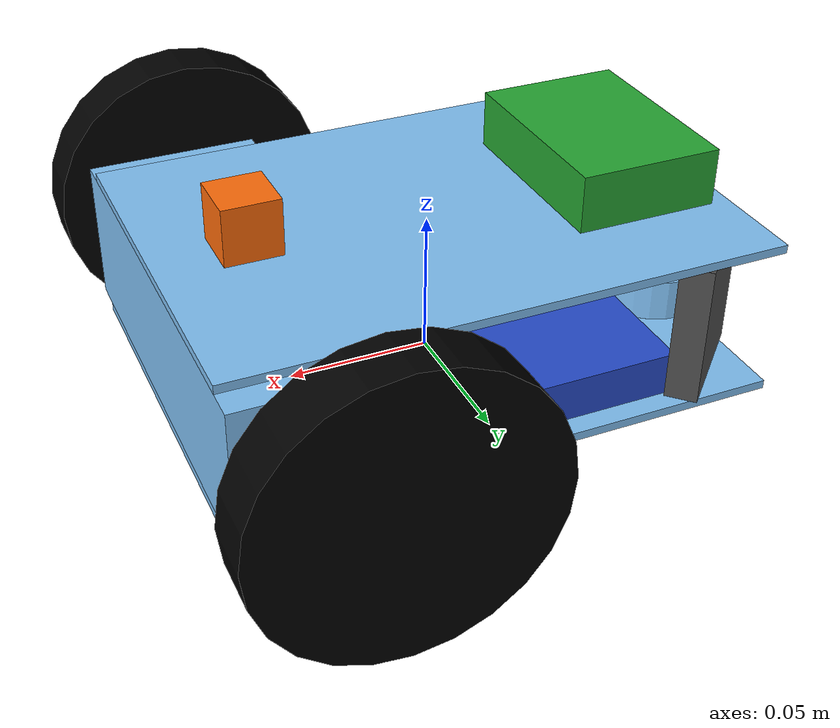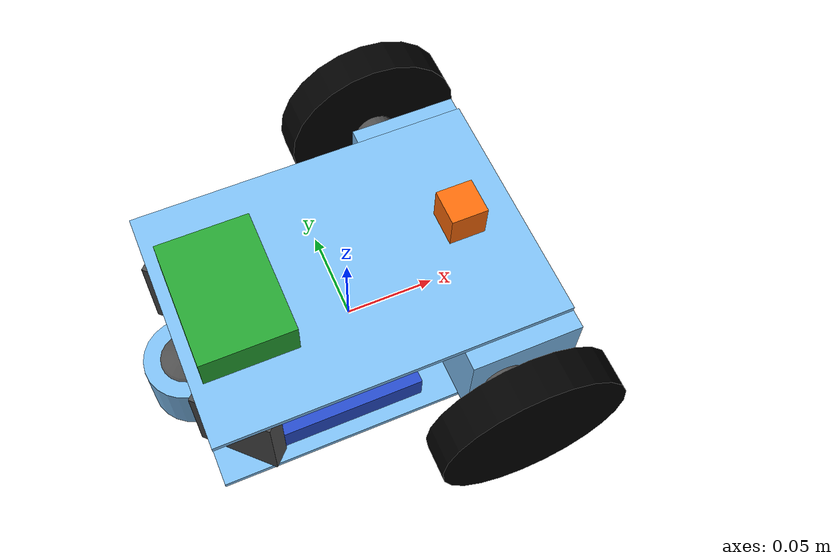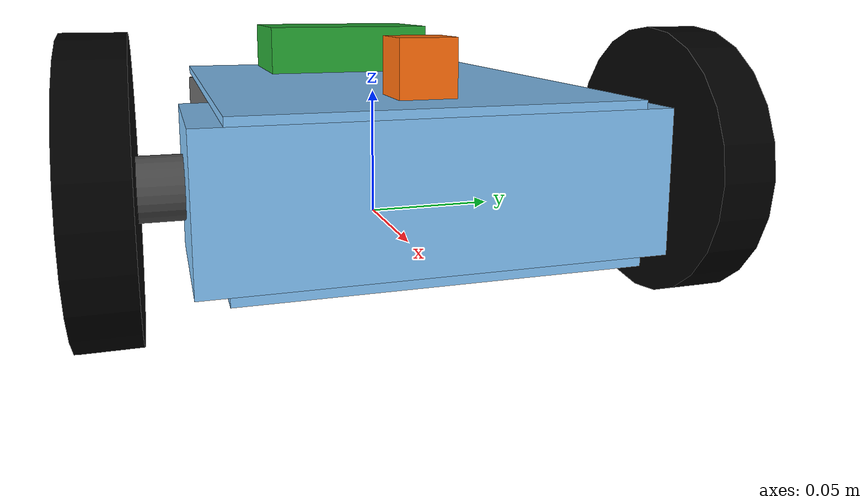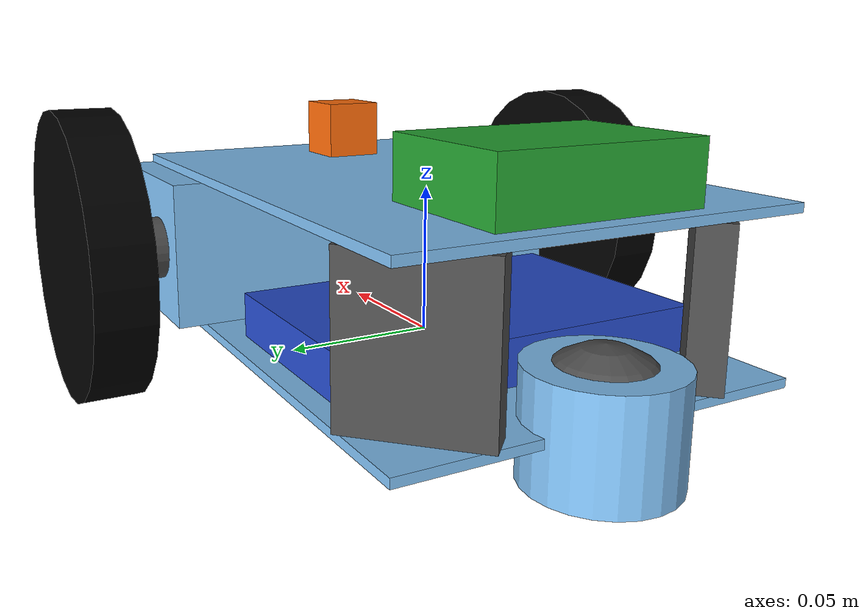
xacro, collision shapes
<?xml version="1.0"?>
<robot name="accurate_noah"
	xmlns:xacro="http://www.ros.org/wiki/xacro">

	<xacro:include filename="$(find noah_description)/urdf/materials.xacro" />
	<xacro:include filename="$(find noah_description)/urdf/wheel.urdf.xacro" />
	<xacro:include filename="$(find noah_description)/urdf/camera_sensor.urdf.xacro" />
	<xacro:include filename="$(find noah_description)/urdf/accurate_base_link.urdf.xacro" />
	<xacro:include filename="$(find noah_description)/urdf/caster_link.urdf.xacro" />

	<xacro:property name="M_PI" value="3.14159"/>

	<!-- Whole accurate_base_link dimensions -->
	<xacro:property name="base_width" value="0.16426" />
	<xacro:property name="base_depth" value="0.19" />
	<xacro:property name="base_height" value="0.056" />

	<xacro:property name="caster_radius" value="0.022" />

	<xacro:property name="wheel_length" value="0.02" />
	<xacro:property name="wheel_radius" value="0.05" />

	<xacro:property name="camera_size" value="0.02" />

	<!-- Base Link -->
	<xacro:accurate_base_link />

	<!-- Caster -->
	<xacro:caster caster_radius="${caster_radius}" parent_link="caster_holder_link">
		<origin xyz="0 0 0" rpy="0 0 0" />
	</xacro:caster>

	<!-- Wheels -->
	<xacro:noah_wheel wheel_prefix="left" wheel_length="${wheel_length}" wheel_radius="${wheel_radius}" parent_link="left_wheel_adapter_link">
		<origin xyz="0 ${wheel_length/2} 0" rpy="0 0 0" />
	</xacro:noah_wheel>

	<xacro:noah_wheel wheel_prefix="right" wheel_length="${wheel_length}" wheel_radius="${wheel_radius}" parent_link="right_wheel_adapter_link">
		<origin xyz="0 -${wheel_length/2} 0" rpy="0 0 0" />
	</xacro:noah_wheel>

	<!-- Camera -->
	<xacro:noah_camera camera_size="${camera_size}" parent_link="top_generic_link">
		<!-- 0.0015 is half the heigth of top generic link -->
		<origin xyz="${base_depth/3} 0 ${camera_size/2 + 0.0015}" rpy="0 0 0" />
	</xacro:noah_camera>

	<!-- *******Gazebo specific******* -->

	<gazebo>
		<plugin name="differential_drive_controller" filename="libgazebo_ros_diff_drive.so">
			<legacyMode>false</legacyMode>
			<alwaysOn>true</alwaysOn>
			<updateRate>20</updateRate>
			<leftJoint>left_wheel_joint</leftJoint>
			<rightJoint>right_wheel_joint</rightJoint>
			<wheelSeparation>0.2</wheelSeparation>
			<wheelDiameter>0.1</wheelDiameter>
			<torque>20</torque>
			<publishWheelTF>False</publishWheelTF>
			<publishWheelJointState>True</publishWheelJointState>
			<commandTopic>cmd_vel</commandTopic>
			<odometryTopic>odom</odometryTopic>
			<odometryFrame>odom</odometryFrame>
			<robotBaseFrame>base_generic_link</robotBaseFrame>
			<publishOdomTF>true</publishOdomTF>
			<wheelAcceleration>0</wheelAcceleration>
			<wheelTorque>5</wheelTorque>
			<odometrySource>world</odometrySource>
			<rosDebugLevel>1</rosDebugLevel>
		</plugin>
	</gazebo>

</robot>

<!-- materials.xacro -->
<robot>

	<material name="black">
		<color rgba="0.0 0.0 0.0 1.0"/>
	</material>

	<material name="blue">
		<color rgba="0.0 0.0 0.8 1.0"/>
	</material>

	<material name="green">
		<color rgba="0.0 1.0 0.0 1.0"/>
	</material>

	<material name="grey">
		<color rgba="0.2 0.2 0.2 1.0"/>
	</material>

	<material name="light_grey">
		<color rgba="0.5 0.5 0.5 1.0"/>
	</material>

	<material name="orange">
		<color rgba="${255/255} ${108/255} ${10/255} 1.0"/>
	</material>

	<material name="brown">
		<color rgba="${222/255} ${207/255} ${195/255} 1.0"/>
	</material>

	<material name="red">
		<color rgba="0.8 0.0 0.0 1.0"/>
	</material>

	<material name="white">
		<color rgba="1.0 1.0 1.0 1.0"/>
	</material>

</robot>

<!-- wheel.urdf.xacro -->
<robot xmlns:xacro="http://ros.org/wiki/xacro" name="noah_wheel">

	<xacro:macro name="noah_wheel" params="wheel_prefix wheel_length wheel_radius parent_link *joint_pose">

		<xacro:property name="M_PI" value="3.14159"/>

		<!-- Wheel description -->
		<link name="${wheel_prefix}_wheel_link">

			<inertial>
				<mass value="0.185" />
				<!-- Taken as solid cylinder -->
				<origin xyz="0 0 0" rpy="${M_PI/2} 0 0" />
				<inertia ixx="0.000121792" ixy="0" ixz="0" iyy="0.000121792" iyz="0" izz="0.00023125" />
			</inertial>

			<visual>
				<origin xyz="0 0 0" rpy="${M_PI/2} 0 0" />
				<geometry>					<!-- Meshes taken from husky robot -->
					<cylinder length="${wheel_length}" radius="${wheel_radius}" />
				</geometry>
				<material name="black" />
			</visual>
			<collision>
				<origin xyz="0 0 0" rpy="${M_PI/2} 0 0" />
				<geometry>
					<cylinder length="${wheel_length}" radius="${wheel_radius}" />
				</geometry>
			</collision>

		</link>

		<!-- Wheel joint, where the wheel is attached. Should specify parent link and position in parent link -->
		<joint name="${wheel_prefix}_wheel_joint" type="continuous">
			<parent link="${parent_link}" />
			<child link="${wheel_prefix}_wheel_link" />
			<xacro:insert_block name="joint_pose"/>
			<axis xyz="0 1 0" />
		</joint>

		<!-- Wheels gazebo properties -->
		<gazebo reference="${wheel_prefix}_wheel_link">
			<mu1 value="1.0"/>
			<mu2 value="1.0"/>
			<kp value="10000000.0" />
			<kd value="1.0" />
			<fdir1 value="1 0 0"/>
			<material>Gazebo/Black</material>
		</gazebo>

	</xacro:macro>

</robot>

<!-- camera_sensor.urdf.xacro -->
<robot xmlns:xacro="http://ros.org/wiki/xacro" name="noah_camera">

  <xacro:macro name="noah_camera" params="camera_size parent_link *joint_pose">

    <xacro:property name="lens_size" value="0.01"/>

    <!-- Link describing the camera "box" -->
    <link name="camera_link">
      <collision>
        <origin xyz="0 0 0" rpy="0 0 0"/>
        <geometry>
          <box size="${camera_size} ${camera_size} ${camera_size}"/>
        </geometry>
      </collision>

      <visual>
        <origin xyz="0 0 0" rpy="0 0 0"/>
        <geometry>
          <box size="${camera_size} ${camera_size} ${camera_size}"/>
        </geometry>
        <material name="orange"/>
      </visual>

      <inertial>
        <mass value="1e-5" />
        <origin xyz="0 0 0" rpy="0 0 0"/>
        <inertia ixx="1e-6" ixy="0" ixz="0" iyy="1e-6" iyz="0" izz="1e-6" />
      </inertial>
    </link>

    <!-- Where the camera attaches to parent_link, given by param -->
    <joint name="camera_joint" type="fixed">
      <xacro:insert_block name="joint_pose"/>
      <parent link="${parent_link}" />
      <child link="camera_link" />
    </joint>

    <!-- Link and joint to position correctly the camera lens, where the sensor rays start -->
    <link name="lens_link">
      <visual>
        <origin xyz="0 0 0" rpy="0 0 0" />
        <geometry>
          <box size="0.0001 ${lens_size} ${lens_size}" />
        </geometry>
        <material name="white"/>
      </visual>
    </link>
    <joint name="lens_camera_joint" type="fixed">
      <origin xyz="${camera_size/2} 0 0" rpy="0 0 0" />
      <parent link="camera_link" />
      <child link="lens_link"/>
    </joint>

    <!-- This next two link and joints are taken from the husky robot. They are meant to correct the kinect point cloud camera position.-->
    <!-- this link is the origin for the camera's data -->
    <link name="kinect" />
    <joint name="kinect_lens_joint" type="fixed">
      <parent link="lens_link"/>
      <child link="kinect"/>
      <origin xyz="0 0 0" rpy="0 0 0"/>
    </joint>

    <link name="kinect_gazebo" />
    <joint name="kinect_gazebo_joint" type="fixed">
      <parent link="kinect"/>
      <child link="kinect_gazebo"/>
      <origin xyz="0.0 0 0" rpy="-1.5707963267948966 0 -1.5707963267948966"/>
    </joint>

    <gazebo reference="kinect">
      <sensor name="kinect_camera" type="depth">
        <update_rate>20</update_rate>
        <camera>
          <horizontal_fov>1.047198</horizontal_fov>
          <image>
            <width>640</width>
            <height>480</height>
            <format>R8G8B8</format>
          </image>
          <clip>
            <near>0.05</near>
            <far>3</far>
          </clip>
        </camera>
        <plugin name="kinect_plugin" filename="libgazebo_ros_openni_kinect.so">
          <baseline>0.2</baseline>
          <alwaysOn>true</alwaysOn>
          <updateRate>1.0</updateRate>
          <cameraName>kinect</cameraName>
          <imageTopicName>/rgb/image</imageTopicName>
          <cameraInfoTopicName>/rgb/camera_info</cameraInfoTopicName>
          <depthImageTopicName>/depth/image</depthImageTopicName>
          <depthImageCameraInfoTopicName>/depth/camera_info</depthImageCameraInfoTopicName>
          <pointCloudTopicName>/depth/points</pointCloudTopicName>
          <frameName>kinect_gazebo</frameName>
          <pointCloudCutoff>0.5</pointCloudCutoff>
          <pointCloudCutoffMax>3.0</pointCloudCutoffMax>
          <distortionK1>0.00000001</distortionK1>
          <distortionK2>0.00000001</distortionK2>
          <distortionK3>0.00000001</distortionK3>
          <distortionT1>0.00000001</distortionT1>
          <distortionT2>0.00000001</distortionT2>
          <CxPrime>0</CxPrime>
          <Cx>0</Cx>
          <Cy>0</Cy>
          <focalLength>0</focalLength>
          <hackBaseline>0</hackBaseline>
        </plugin>
      </sensor>
    </gazebo>

    <gazebo reference="lens_link">
      <sensor type="ray" name="head_hokuyo_sensor">
        <pose>0 0 0 0 0 0</pose>
        <visualize>true</visualize>
        <update_rate>40</update_rate>
        <ray>
          <scan>
            <horizontal>
              <samples>720</samples>
              <resolution>1</resolution>
              <min_angle>-1.4</min_angle>
              <max_angle>1.4</max_angle>
            </horizontal>
          </scan>
          <range>
            <min>0.10</min>
            <max>30.0</max>
            <resolution>0.01</resolution>
          </range>
          <noise>
            <type>gaussian</type>
            <mean>0.0</mean>
            <stddev>0.01</stddev>
          </noise>
        </ray>
        <plugin name="gazebo_ros_laser_controller" filename="libgazebo_ros_laser.so">
          <topicName>/scan</topicName>
          <frameName>lens_link</frameName>
        </plugin>
      </sensor>
    </gazebo>

    <!-- Gazebo color -->
    <gazebo reference="camera_link">
      <material> Gazebo/Orange </material>
    </gazebo>

  </xacro:macro>

</robot>

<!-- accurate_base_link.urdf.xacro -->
<robot xmlns:xacro="http://ros.org/wiki/xacro" name="accurate_base_link">

	<!-- All visuals meshes origins are eye-balled to match the collisions
		 This is due to a mismatch in positions when generating the meshes for all the parts. -->

	<xacro:macro name="accurate_base_link">

		<xacro:property name="M_PI" value="3.14159"/>

		<!-- BASE************************************************************************** -->

		<xacro:property name="base_generic_depth" value="0.19"/>
		<xacro:property name="base_generic_width" value="0.135"/>
		<xacro:property name="base_generic_heigth" value="0.003"/>

		<link name="base_generic_link">			<!-- Botom base generic -->

			<inertial>
				<mass value="0.01117" />
				<inertia ixx="0.0000336115" ixy="0" ixz="0" iyy="0.0000505675" iyz="0" izz="0.0000169728" />
			</inertial>

			<visual>
				<origin xyz="-0.095 -0.0675 -0.0015" rpy="${M_PI/2} 0 ${M_PI/2}" />
				<geometry>
					<mesh filename="package://noah_description/meshes/noah_base_generic_printed.dae" scale="0.001 0.001 0.001"/>
				</geometry>
			</visual>
			<collision>
				<origin xyz="0 0 0" rpy="0 0 0" />
				<geometry>
					<box size="${base_generic_depth} ${base_generic_width} ${base_generic_heigth}" />
				</geometry>
			</collision>

		</link>

		<gazebo reference="base_generic_link">
			<material>Gazebo/SkyBlue</material>
		</gazebo>

		<!-- FRONT************************************************************************** -->

		<xacro:property name="front_depth" value="0.06"/>
		<xacro:property name="front_width" value="0.155"/>
		<xacro:property name="front_heigth" value="0.05"/>

		<link name="front_link">

			<inertial>
				<mass value="0.19" />
				<inertia ixx="0.0000965833" ixy="0" ixz="0" iyy="0.000437396" iyz="0" izz="0.000419979" />
			</inertial>

			<visual>
				<origin xyz="-0.03 -0.0775 -0.025" rpy="${M_PI/2} 0 ${M_PI/2}" />
				<geometry>
					<mesh filename="package://noah_description/meshes/front_noah_printed.STL" scale="0.001 0.001 0.001"/>
				</geometry>
			</visual>
			<collision>
				<origin xyz="0 0 0" rpy="0 0 0" />
				<geometry>
					<box size="${front_depth} ${front_width} ${front_heigth}" />
				</geometry>
			</collision>
		</link>

		<joint name="base_front_joint" type="fixed">
			<parent link="base_generic_link" />
			<child link="front_link" />
			<origin xyz="${base_generic_depth/2 - front_depth/2} 0 ${front_heigth/2 + base_generic_heigth/2}" rpy="0 0 0" />
		</joint>

		<gazebo reference="front_link">
			<material>Gazebo/SkyBlue</material>
		</gazebo>

		<!-- CASTER HOLDER************************************************************************** -->

		<xacro:property name="caster_holder_radius" value="0.02299"/>
		<xacro:property name="caster_holder_length" value="0.033316"/>

		<link name="caster_holder_link">
			<inertial>
				<mass value="0.01391" />
				<inertia ixx="0.0000031246" ixy="0" ixz="0" iyy="0.0000031246" iyz="0" izz="0.0003676" />
			</inertial>

			<visual>
				<origin xyz="0.022964 -0.03048 0.016316" rpy="-${M_PI/2} 0 ${M_PI/2}" />
				<geometry>
					<mesh filename="package://noah_description/meshes/C000_printed.STL" scale="0.001 0.001 0.001"/>
				</geometry>
			</visual>

			<visual>
				<origin xyz="0.022964 -0.030488 0.016316" rpy="-${M_PI/2} 0 ${M_PI/2}" />
				<geometry>
					<mesh filename="package://noah_description/meshes/C001_printed.STL" scale="0.001 0.001 0.001"/>
				</geometry>
			</visual>

			<collision>
				<origin xyz="0 0 0" rpy="0 0 0" />
				<geometry>
					<cylinder radius="${caster_holder_radius}" length="${caster_holder_length}"/>
				</geometry>
			</collision>
		</link>

		<joint name="caster_holder_joint" type="fixed">
			<parent link="base_generic_link" />
			<child link="caster_holder_link" />
			<origin xyz="-0.091 0 0" rpy="0 0 0" />
			<!-- Origin in x adjusted by hand -->
		</joint>

		<gazebo reference="caster_holder_link">
			<material>Gazebo/SkyBlue</material>
		</gazebo>

		<!-- BASE SUPPORTS************************************************************************** -->
		<!-- Joints x and y coords are adjusted by hand -->

		<xacro:property name="base_support_depth" value="0.04306"/>
		<xacro:property name="base_support_width" value="0.011069"/>
		<xacro:property name="base_support_heigth" value="0.05"/>

		<link name="left_base_support_link">
			<inertial>
				<mass value="0.0104" />
				<origin xyz="0 0 0" rpy="0 0 -${M_PI/4}" />
				<inertia ixx="0.0000037736" ixy="0" ixz="0" iyy="0.000001713" iyz="0" izz="0.0000022728" />
			</inertial>

			<visual>
				<origin xyz="-0.016 0.093 0.025" rpy="-${M_PI/2} 0 -${M_PI/4}" />
				<geometry>
					<mesh filename="package://noah_description/meshes/back_left_generic_printed.STL" scale="0.001 0.001 0.001"/>
				</geometry>
			</visual>

			<collision>
				<origin xyz="0 0 0" rpy="0 0 -${M_PI/4}" />
				<geometry>
					<box size="${base_support_depth} ${base_support_width} ${base_support_heigth}" />
				</geometry>
			</collision>
		</link>

		<joint name="base_left_support_joint" type="fixed">
			<parent link="base_generic_link" />
			<child link="left_base_support_link" />
			<origin xyz="-0.07847 -0.04997 ${base_generic_heigth/2 + base_support_heigth/2}" rpy="0 0 0" />
		</joint>

		<link name="right_base_support_link">
			<inertial>
				<mass value="0.0104" />
				<origin xyz="0 0 0" rpy="0 0 ${M_PI/4}" />
				<inertia ixx="0.0000037736" ixy="0" ixz="0" iyy="0.000001713" iyz="0" izz="0.0000022728" />
			</inertial>

			<visual>
				<origin xyz="-0.008 -0.085 0.025" rpy="-${M_PI/2} 0 -2.35619" />
				<geometry>
					<mesh filename="package://noah_description/meshes/back_right_generic_printed.STL" scale="0.001 0.001 0.001"/>
				</geometry>
			</visual>

			<collision>
				<origin xyz="0 0 0" rpy="0 0 ${M_PI/4}" />
				<geometry>
					<box size="${base_support_depth} ${base_support_width} ${base_support_heigth}" />
				</geometry>
			</collision>
		</link>

		<joint name="base_right_support_joint" type="fixed">
			<parent link="base_generic_link" />
			<child link="right_base_support_link" />
			<origin xyz="-0.07847 0.04997 ${base_generic_heigth/2 + base_support_heigth/2}" rpy="0 0 0" />
		</joint>

		<gazebo reference="left_base_support_link">
			<material>Gazebo/DarkGrey</material>
		</gazebo>

		<gazebo reference="right_base_support_link">
			<material>Gazebo/DarkGrey</material>
		</gazebo>

		<!-- TOP************************************************************************** -->

		<xacro:property name="top_generic_depth" value="0.19"/>
		<xacro:property name="top_generic_width" value="0.135"/>
		<xacro:property name="top_generic_heigth" value="0.003"/>

		<link name="top_generic_link">

			<inertial>
				<mass value="0.01117" />
				<inertia ixx="0.0000336115" ixy="0" ixz="0" iyy="0.0000505675" iyz="0" izz="0.0000169728" />
			</inertial>

			<visual>
				<origin xyz="-0.095 -0.0675 -0.0015" rpy="${M_PI/2} 0 ${M_PI/2}" />
				<geometry>
					<mesh filename="package://noah_description/meshes/top_generic.STL" scale="0.001 0.001 0.001"/>
				</geometry>
			</visual>
			<collision>
				<origin xyz="0 0 0" rpy="0 0 0" />
				<geometry>
					<box size="${top_generic_depth} ${top_generic_width} ${top_generic_heigth}" />
				</geometry>
			</collision>

		</link>

		<joint name="base_top_joint" type="fixed">
			<parent link="base_generic_link" />
			<child link="top_generic_link" />
			<origin xyz="0 0 ${base_support_heigth + top_generic_heigth/2 + base_generic_heigth/2}" rpy="0 0 0" />
		</joint>

		<gazebo reference="top_generic_link">
			<material>Gazebo/SkyBlue</material>
		</gazebo>

		<!-- WHEEL ADAPTERS************************************************************************** -->

		<xacro:property name="wheel_adapter_radius" value="0.01085"/>
		<xacro:property name="wheel_adapter_length" value="0.02926"/>

		<link name="left_wheel_adapter_link">

			<inertial>
				<mass value="0.015" />
				<origin xyz="0 0 0" rpy="${M_PI/2} 0 0" />
				<inertia ixx="0.000001512" ixy="0" ixz="0" iyy="0.000001512" iyz="0" izz="0.00000088291" />
			</inertial>

			<visual>
				<origin xyz="-0.011 0.015 -0.013" rpy="${M_PI/2} 0 0" />
				<geometry>
					<mesh filename="package://noah_description/meshes/adapter1_printed.STL" scale="0.001 0.001 0.001"/>
				</geometry>
			</visual>
			<collision>
				<origin xyz="0 0 0" rpy="${M_PI/2} 0 0" />
				<geometry>
					<cylinder length="${wheel_adapter_length}" radius="${wheel_adapter_radius}" />
				</geometry>
			</collision>

		</link>

		<joint name="front_left_wheel_adapter_joint" type="fixed">
			<parent link="front_link" />
			<child link="left_wheel_adapter_link" />
			<origin xyz="-${wheel_adapter_radius} ${front_width/2 + wheel_adapter_length/2} 0" rpy="0 0 0" />
		</joint>

		<link name="right_wheel_adapter_link">

			<inertial>
				<mass value="0.015" />
				<origin xyz="0 0 0" rpy="${M_PI/2} 0 0" />
				<inertia ixx="0.000001512" ixy="0" ixz="0" iyy="0.000001512" iyz="0" izz="0.00000088291" />
			</inertial>

			<visual>
				<origin xyz="0.011 -0.015 -0.013" rpy="${M_PI/2} 0 ${M_PI}" />
				<geometry>
					<mesh filename="package://noah_description/meshes/adapter1_printed.STL" scale="0.001 0.001 0.001"/>
				</geometry>
			</visual>
			<collision>
				<origin xyz="0 0 0" rpy="${M_PI/2} 0 0" />
				<geometry>
					<cylinder length="${wheel_adapter_length}" radius="${wheel_adapter_radius}" />
				</geometry>
			</collision>

		</link>

		<joint name="front_right_wheel_adapter_joint" type="fixed">
			<parent link="front_link" />
			<child link="right_wheel_adapter_link" />
			<origin xyz="-${wheel_adapter_radius} -${front_width/2 + wheel_adapter_length/2} 0" rpy="0 0 0" />
		</joint>

		<gazebo reference="left_wheel_adapter_link">
			<material>Gazebo/DarkGrey</material>
		</gazebo>

		<gazebo reference="right_wheel_adapter_link">
			<material>Gazebo/DarkGrey</material>
		</gazebo>

		<!-- BATTERIES************************************************************************** -->

		<xacro:property name="battery_depth" value="0.05"/>
		<xacro:property name="battery_width" value="0.07"/>
		<xacro:property name="battery_heigth" value="0.02"/>

		<link name="battery_link">

			<inertial>
				<mass value="0.22" />
				<inertia ixx="0.1" ixy="0" ixz="0" iyy="0.1" iyz="0" izz="0.1" />
			</inertial>

			<visual>
				<origin xyz="0 0 0" rpy="0 0 0" />
				<geometry>
					<box size="${battery_depth} ${battery_width} ${battery_heigth}" />
				</geometry>
			</visual>
			<collision>
				<origin xyz="0 0 0" rpy="0 0 0" />
				<geometry>
					<box size="${battery_depth} ${battery_width} ${battery_heigth}" />
				</geometry>
			</collision>

		</link>

		<joint name="top_battery_joint" type="fixed">
			<parent link="top_generic_link" />
			<child link="battery_link" />
			<origin xyz="-${top_generic_depth/3} 0 ${battery_heigth/2 + top_generic_heigth/2}" rpy="0 0 0" />
		</joint>

		<gazebo reference="battery_link">
			<material>Gazebo/Green</material>
		</gazebo>

		<!-- ELECTRONICS************************************************************************** -->

		<xacro:property name="electronics_depth" value="0.08"/>
		<xacro:property name="electronics_width" value="0.12"/>
		<xacro:property name="electronics_heigth" value="0.015"/>

		<link name="electronics_link">

			<inertial>
				<mass value="0.22" />
				<inertia ixx="0.1" ixy="0" ixz="0" iyy="0.1" iyz="0" izz="0.1" />
			</inertial>

			<visual>
				<origin xyz="0 0 0" rpy="0 0 0" />
				<geometry>
					<box size="${electronics_depth} ${electronics_width} ${electronics_heigth}" />
				</geometry>
			</visual>
			<collision>
				<origin xyz="0 0 0" rpy="0 0 0" />
				<geometry>
					<box size="${electronics_depth} ${electronics_width} ${electronics_heigth}" />
				</geometry>
			</collision>

		</link>

		<joint name="base_electronics_joint" type="fixed">
			<parent link="base_generic_link" />
			<child link="electronics_link" />
			<origin xyz="-${electronics_depth/3.5} 0 ${base_generic_heigth/2 + electronics_heigth/2}" rpy="0 0 0" />
		</joint>

		<gazebo reference="electronics_link">
			<material>Gazebo/Blue</material>
		</gazebo>

	</xacro:macro>
</robot>

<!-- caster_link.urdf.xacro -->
<robot xmlns:xacro="http://ros.org/wiki/xacro" name="caster">

	<xacro:macro name="caster" params="caster_radius parent_link *joint_pose">

		<!-- caster description, simple sphere with no friction (ping pong ball) -->
		<link name="caster_link">

			<inertial>
				<mass value="0.003" />
				<inertia ixx="0.000000968" ixy="0" ixz="0" iyy="0.000000968" iyz="0" izz="0.000000968" />
			</inertial>

			<visual>
				<origin xyz="0 0 0" rpy="0 0 0" />
				<geometry>
					<sphere radius="${caster_radius}" />
				</geometry>
			</visual>
			<collision>
				<origin xyz="0 0 0" rpy="0 0 0" />
				<geometry>
					<sphere radius="${caster_radius}" />
				</geometry>
			</collision>

		</link>

		<!-- caster joint, where the caster is attached -->
		<joint name="caster_joint" type="fixed">
			<parent link="${parent_link}" />
			<child link="caster_link" />
			<xacro:insert_block name="joint_pose"/>
		</joint>

		<!-- caster gazebo properties -->
		<gazebo reference="caster_link">
			<mu1 value="0.0"/>
			<mu2 value="0.0"/>
			<material>Gazebo/DarkGrey</material>
		</gazebo>

	</xacro:macro>

</robot>
